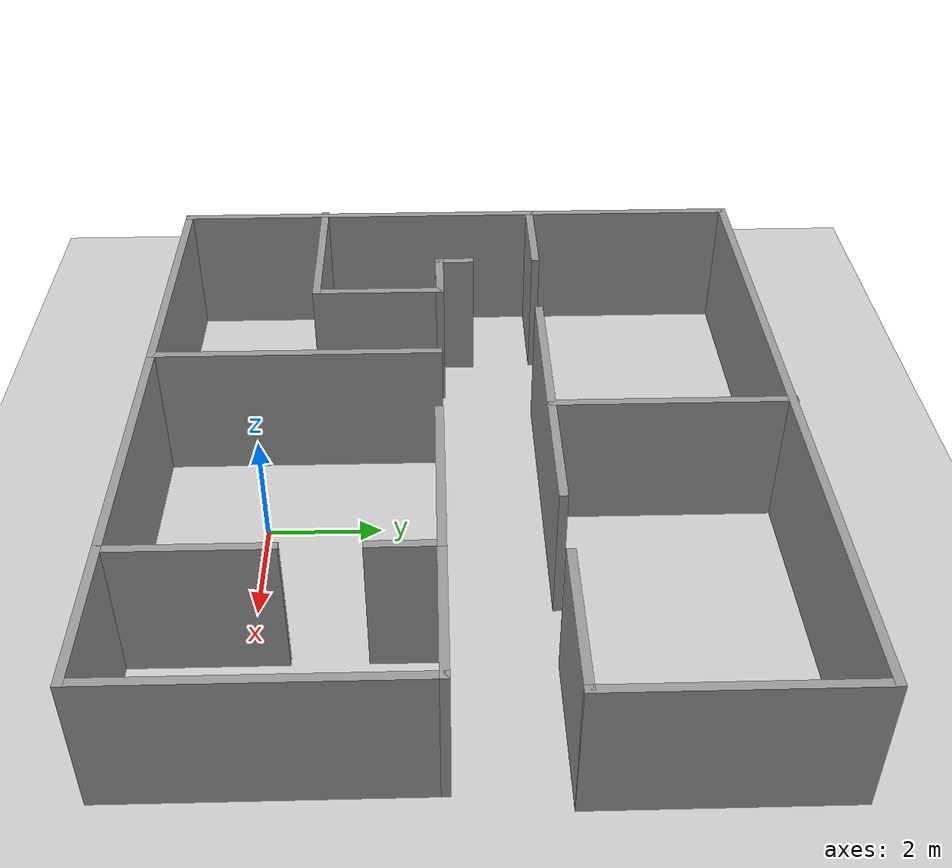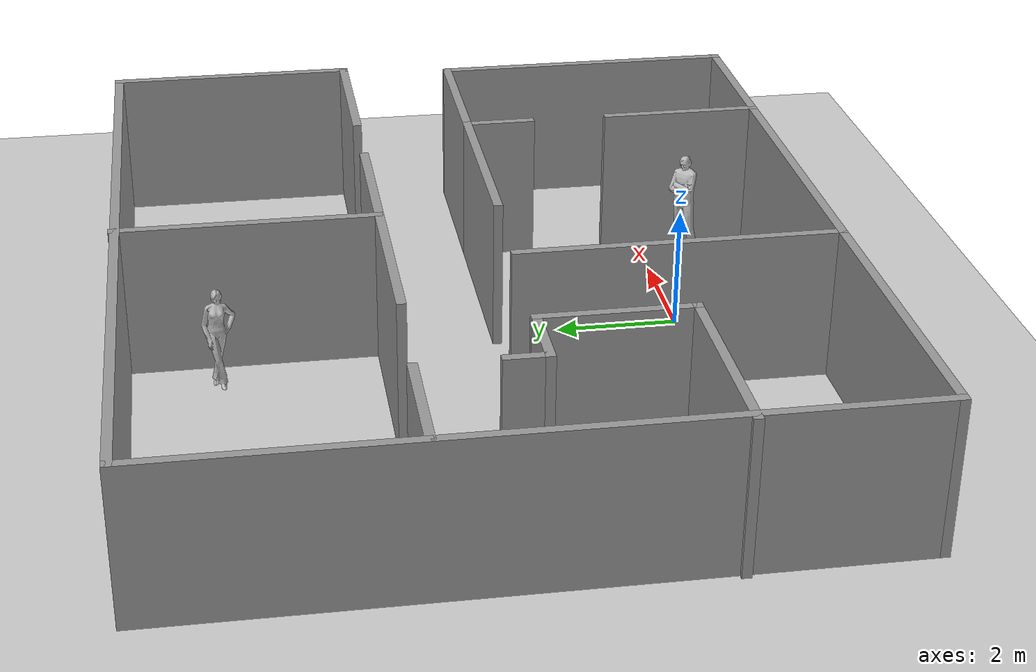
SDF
<sdf version="1.6">
 <world name="default">
  <light name="sun" type="directional">
   <pose>0 0 10 0 -0 0</pose>
   <diffuse>0.8 0.8 0.8 1</diffuse>
   <specular>0.1 0.1 0.1 1</specular>
   <attenuation>
    <range>1000</range>
    <constant>0.9</constant>
    <linear>0.01</linear>
    <quadratic>0.001</quadratic>
   </attenuation>
   <direction>-0.5 0.5 -1</direction>
  </light>
  <model name="ground_plane">
   <static>1</static>
   <link name="link">
    <collision name="collision">
     <geometry><plane><normal>0 0 1</normal><size>100 100</size></plane></geometry>
     <surface><friction><ode><mu>100</mu><mu2>50</mu2></ode></friction></surface>
    </collision>
    <visual name="visual">
     <cast_shadows>0</cast_shadows>
     <geometry><plane><normal>0 0 1</normal><size>100 100</size></plane></geometry>
     <material>
      <script><uri>file://media/materials/scripts/gazebo.material</uri><name>Gazebo/Grey</name></script>
     </material>
    </visual>
   </link>
  </model>
  <gravity>0 0 -9.8</gravity>
  <magnetic_field>6e-06 2.3e-05 -4.2e-05</magnetic_field>
  <atmosphere type="adiabatic"/>
  <physics name="default_physics" default="0" type="ode">
   <max_step_size>0.001</max_step_size>
   <real_time_factor>1</real_time_factor>
   <real_time_update_rate>1000</real_time_update_rate>
  </physics>
  <scene><ambient>0.4 0.4 0.4 1</ambient><background>0.7 0.7 0.7 1</background><shadows>1</shadows></scene>
  <spherical_coordinates>
   <surface_model>EARTH_WGS84</surface_model>
   <latitude_deg>0</latitude_deg>
   <longitude_deg>0</longitude_deg>
   <elevation>0</elevation>
   <heading_deg>0</heading_deg>
  </spherical_coordinates>
  <model name="flat_3">
   <pose>-0.575876 3.5217 0 0 -0 0</pose>
   <link name="Wall_0">
    <collision name="Wall_0_Collision">
     <geometry><box><size>5.25 0.15 2.5</size></box></geometry>
     <pose>0 0 1.25 0 -0 0</pose>
    </collision>
    <visual name="Wall_0_Visual">
     <pose>0 0 1.25 0 -0 0</pose>
     <geometry><box><size>5.25 0.15 2.5</size></box></geometry>
     <material>
      <script><uri>file://media/materials/scripts/gazebo.material</uri><name>Gazebo/Grey</name></script>
      <ambient>1 1 1 1</ambient>
     </material>
    </visual>
    <pose>-1.41412 -3.0117 0 0 -0 1.5708</pose>
   </link>
   <link name="Wall_11">
    <collision name="Wall_11_Collision">
     <geometry><box><size>2.75 0.15 2.5</size></box></geometry>
     <pose>0 0 1.25 0 -0 0</pose>
    </collision>
    <visual name="Wall_11_Visual">
     <pose>0 0 1.25 0 -0 0</pose>
     <geometry><box><size>2.75 0.15 2.5</size></box></geometry>
     <material>
      <script><uri>file://media/materials/scripts/gazebo.material</uri><name>Gazebo/Grey</name></script>
      <ambient>1 1 1 1</ambient>
     </material>
    </visual>
    <pose>4.98588 -5.5617 0 0 -0 0</pose>
   </link>
   <link name="Wall_14">
    <collision name="Wall_14_Collision">
     <geometry><box><size>5.25 0.15 2.5</size></box></geometry>
     <pose>0 0 1.25 0 -0 0</pose>
    </collision>
    <visual name="Wall_14_Visual">
     <pose>0 0 1.25 0 -0 0</pose>
     <geometry><box><size>5.25 0.15 2.5</size></box></geometry>
     <material>
      <script><uri>file://media/materials/scripts/gazebo.material</uri><name>Gazebo/Grey</name></script>
      <ambient>1 1 1 1</ambient>
     </material>
    </visual>
    <pose>6.28588 -3.0117 0 0 -0 1.5708</pose>
   </link>
   <link name="Wall_15">
    <collision name="Wall_15_Collision">
     <geometry><box><size>2.75 0.15 2.5</size></box></geometry>
     <pose>0 0 1.25 0 -0 0</pose>
    </collision>
    <visual name="Wall_15_Visual">
     <pose>0 0 1.25 0 -0 0</pose>
     <geometry><box><size>2.75 0.15 2.5</size></box></geometry>
     <material>
      <script><uri>file://media/materials/scripts/gazebo.material</uri><name>Gazebo/Grey</name></script>
      <ambient>1 1 1 1</ambient>
     </material>
    </visual>
    <pose>4.98588 -0.461699 0 0 -0 3.14159</pose>
   </link>
   <link name="Wall_17">
    <collision name="Wall_17_Collision">
     <geometry><box><size>5.25 0.15 2.5</size></box></geometry>
     <pose>0 0 1.25 0 -0 0</pose>
    </collision>
    <visual name="Wall_17_Visual">
     <pose>0 0 1.25 0 -0 0</pose>
     <geometry><box><size>5.25 0.15 2.5</size></box></geometry>
     <material>
      <script><uri>file://media/materials/scripts/gazebo.material</uri><name>Gazebo/Grey</name></script>
      <ambient>1 1 1 1</ambient>
     </material>
    </visual>
    <pose>-3.96412 -5.5617 0 0 -0 3.14159</pose>
   </link>
   <link name="Wall_18">
    <collision name="Wall_18_Collision">
     <geometry><box><size>11.25 0.15 2.5</size></box></geometry>
     <pose>0 0 1.25 0 -0 0</pose>
    </collision>
    <visual name="Wall_18_Visual">
     <pose>0 0 1.25 0 -0 0</pose>
     <geometry><box><size>11.25 0.15 2.5</size></box></geometry>
     <material>
      <script><uri>file://media/materials/scripts/gazebo.material</uri><name>Gazebo/Grey</name></script>
      <ambient>1 1 1 1</ambient>
     </material>
    </visual>
    <pose>-6.51412 -0.011699 0 0 -0 1.5708</pose>
   </link>
   <link name="Wall_19">
    <collision name="Wall_19_Collision">
     <geometry><box><size>13.25 0.15 2.5</size></box></geometry>
     <pose>0 0 1.25 0 -0 0</pose>
    </collision>
    <visual name="Wall_19_Visual">
     <pose>0 0 1.25 0 -0 0</pose>
     <geometry><box><size>13.25 0.15 2.5</size></box></geometry>
     <material>
      <script><uri>file://media/materials/scripts/gazebo.material</uri><name>Gazebo/Grey</name></script>
      <ambient>1 1 1 1</ambient>
     </material>
    </visual>
    <pose>0.035876 5.5383 0 0 -0 0</pose>
   </link>
   <link name="Wall_20">
    <collision name="Wall_20_Collision">
     <geometry><box><size>4.25 0.15 2.5</size></box></geometry>
     <pose>0 0 1.25 0 -0 0</pose>
    </collision>
    <visual name="Wall_20_Visual">
     <pose>0 0 1.25 0 -0 0</pose>
     <geometry><box><size>4.25 0.15 2.5</size></box></geometry>
     <material>
      <script><uri>file://media/materials/scripts/gazebo.material</uri><name>Gazebo/Grey</name></script>
      <ambient>1 1 1 1</ambient>
     </material>
    </visual>
    <pose>6.58588 3.4883 0 0 0 -1.5708</pose>
   </link>
   <link name="Wall_23">
    <collision name="Wall_23_Collision">
     <geometry><box><size>2 0.15 2.5</size></box></geometry>
     <pose>0 0 1.25 0 -0 0</pose>
    </collision>
    <visual name="Wall_23_Visual">
     <pose>0 0 1.25 0 -0 0</pose>
     <geometry><box><size>2 0.15 2.5</size></box></geometry>
     <material>
      <script><uri>file://media/materials/scripts/gazebo.material</uri><name>Gazebo/Grey</name></script>
      <ambient>1 1 1 1</ambient>
     </material>
    </visual>
    <pose>-5.55198 1.49212 0 0 -0 0</pose>
   </link>
   <link name="Wall_25">
    <collision name="Wall_25_Collision">
     <geometry><box><size>5.5 0.15 2.5</size></box></geometry>
     <pose>0 0 1.25 0 -0 0</pose>
    </collision>
    <visual name="Wall_25_Visual">
     <pose>0 0 1.25 0 -0 0</pose>
     <geometry><box><size>5.5 0.15 2.5</size></box></geometry>
     <material>
      <script><uri>file://media/materials/scripts/gazebo.material</uri><name>Gazebo/Grey</name></script>
      <ambient>1 1 1 1</ambient>
     </material>
    </visual>
    <pose>-0.089124 1.4383 0 0 -0 0</pose>
   </link>
   <link name="Wall_27">
    <collision name="Wall_27_Collision">
     <geometry><box><size>2.75 0.15 2.5</size></box></geometry>
     <pose>0 0 1.25 0 -0 0</pose>
    </collision>
    <visual name="Wall_27_Visual">
     <pose>0 0 1.25 0 -0 0</pose>
     <geometry><box><size>2.75 0.15 2.5</size></box></geometry>
     <material>
      <script><uri>file://media/materials/scripts/gazebo.material</uri><name>Gazebo/Grey</name></script>
      <ambient>1 1 1 1</ambient>
     </material>
    </visual>
    <pose>5.23588 1.4383 0 0 -0 0</pose>
   </link>
   <link name="Wall_29">
    <collision name="Wall_29_Collision">
     <geometry><box><size>4.25 0.15 2.5</size></box></geometry>
     <pose>0 0 1.25 0 -0 0</pose>
    </collision>
    <visual name="Wall_29_Visual">
     <pose>0 0 1.25 0 -0 0</pose>
     <geometry><box><size>4.25 0.15 2.5</size></box></geometry>
     <material>
      <script><uri>file://media/materials/scripts/gazebo.material</uri><name>Gazebo/Grey</name></script>
      <ambient>1 1 1 1</ambient>
     </material>
    </visual>
    <pose>0.214873 3.5117 0 0 -0 1.5708</pose>
   </link>
   <link name="Wall_3">
    <collision name="Wall_3_Collision">
     <geometry><box><size>5.25 0.15 2.5</size></box></geometry>
     <pose>0 0 1.25 0 -0 0</pose>
    </collision>
    <visual name="Wall_3_Visual">
     <pose>0 0 1.25 0 -0 0</pose>
     <geometry><box><size>5.25 0.15 2.5</size></box></geometry>
     <material>
      <script><uri>file://media/materials/scripts/gazebo.material</uri><name>Gazebo/Grey</name></script>
      <ambient>1 1 1 1</ambient>
     </material>
    </visual>
    <pose>1.13588 -5.5617 0 0 -0 0</pose>
   </link>
   <link name="Wall_32">
    <collision name="Wall_32_Collision">
     <geometry><box><size>3.25 0.15 2.5</size></box></geometry>
     <pose>0 0 1.25 0 -0 0</pose>
    </collision>
    <visual name="Wall_32_Visual">
     <pose>0 0 1.25 0 -0 0</pose>
     <geometry><box><size>3.25 0.15 2.5</size></box></geometry>
     <material>
      <script><uri>file://media/materials/scripts/gazebo.material</uri><name>Gazebo/Grey</name></script>
      <ambient>1 1 1 1</ambient>
     </material>
    </visual>
    <pose>-5.03588 -2.75475 0 0 -0 0</pose>
   </link>
   <link name="Wall_33">
    <collision name="Wall_33_Collision">
     <geometry><box><size>2.5 0.15 2.5</size></box></geometry>
     <pose>0 0 1.25 0 -0 0</pose>
    </collision>
    <visual name="Wall_33_Visual">
     <pose>0 0 1.25 0 -0 0</pose>
     <geometry><box><size>2.5 0.15 2.5</size></box></geometry>
     <material>
      <script><uri>file://media/materials/scripts/gazebo.material</uri><name>Gazebo/Grey</name></script>
      <ambient>1 1 1 1</ambient>
     </material>
    </visual>
    <pose>-3.48588 -1.57975 0 0 -0 1.5708</pose>
   </link>
   <link name="Wall_34">
    <collision name="Wall_34_Collision">
     <geometry><box><size>1.25 0.15 2.5</size></box></geometry>
     <pose>0 0 1.25 0 -0 0</pose>
    </collision>
    <visual name="Wall_34_Visual">
     <pose>0 0 1.25 0 -0 0</pose>
     <geometry><box><size>1.25 0.15 2.5</size></box></geometry>
     <material>
      <script><uri>file://media/materials/scripts/gazebo.material</uri><name>Gazebo/Grey</name></script>
      <ambient>1 1 1 1</ambient>
     </material>
    </visual>
    <pose>-4.03588 -0.404749 0 0 -0 3.14159</pose>
   </link>
   <link name="Wall_35">
    <collision name="Wall_35_Collision">
     <geometry><box><size>0.75 0.15 2.5</size></box></geometry>
     <pose>0 0 1.25 0 -0 0</pose>
    </collision>
    <visual name="Wall_35_Visual">
     <pose>0 0 1.25 0 -0 0</pose>
     <geometry><box><size>0.75 0.15 2.5</size></box></geometry>
     <material>
      <script><uri>file://media/materials/scripts/gazebo.material</uri><name>Gazebo/Grey</name></script>
      <ambient>1 1 1 1</ambient>
     </material>
    </visual>
    <pose>-4.58588 -0.104749 0 0 -0 1.5708</pose>
   </link>
   <link name="Wall_5">
    <collision name="Wall_5_Collision">
     <geometry><box><size>3.5 0.15 2.5</size></box></geometry>
     <pose>0 0 1.25 0 -0 0</pose>
    </collision>
    <visual name="Wall_5_Visual">
     <pose>0 0 1.25 0 -0 0</pose>
     <geometry><box><size>3.5 0.15 2.5</size></box></geometry>
     <material>
      <script><uri>file://media/materials/scripts/gazebo.material</uri><name>Gazebo/Grey</name></script>
      <ambient>1 1 1 1</ambient>
     </material>
    </visual>
    <pose>2.01088 -0.461699 0 0 -0 3.14159</pose>
   </link>
   <link name="Wall_7">
    <collision name="Wall_7_Collision">
     <geometry><box><size>1.25 0.15 2.5</size></box></geometry>
     <pose>0 0 1.25 0 -0 0</pose>
    </collision>
    <visual name="Wall_7_Visual">
     <pose>0 0 1.25 0 -0 0</pose>
     <geometry><box><size>1.25 0.15 2.5</size></box></geometry>
     <material>
      <script><uri>file://media/materials/scripts/gazebo.material</uri><name>Gazebo/Grey</name></script>
      <ambient>1 1 1 1</ambient>
     </material>
    </visual>
    <pose>3.68588 -1.0117 0 0 0 -1.5708</pose>
   </link>
   <link name="Wall_9">
    <collision name="Wall_9_Collision">
     <geometry><box><size>2.75 0.15 2.5</size></box></geometry>
     <pose>0 0 1.25 0 -0 0</pose>
    </collision>
    <visual name="Wall_9_Visual">
     <pose>0 0 1.25 0 -0 0</pose>
     <geometry><box><size>2.75 0.15 2.5</size></box></geometry>
     <material>
      <script><uri>file://media/materials/scripts/gazebo.material</uri><name>Gazebo/Grey</name></script>
      <ambient>1 1 1 1</ambient>
     </material>
    </visual>
    <pose>3.68588 -4.2617 0 0 -0 1.5708</pose>
   </link>
   <static>1</static>
  </model>
  <model name="citizen_extras_male_03">
   <static>1</static>
   <link name="link">
    <inertial>
     <mass>20</mass>
     <inertia><ixx>0.0</ixx><ixy>0.0</ixy><ixz>0.0</ixz><iyy>0.0</iyy><iyz>0.0</iyz><izz>0.0</izz></inertia>
    </inertial>
    <collision name="collision">
     <pose>2.45 -0.75 0 0 0 -2.32</pose>
     <geometry><mesh><uri>model://citizen_extras_male_03/meshes/mesh.dae</uri></mesh></geometry>
    </collision>
    <visual name="visual">
     <pose>2.45 -0.75 0 0 0 -2.32</pose>
     <geometry><mesh><uri>model://citizen_extras_male_03/meshes/mesh.dae</uri></mesh></geometry>
    </visual>
   </link>
  </model>
  <model name="citizen_extras_female_03">
   <static>1</static>
   <link name="link">
    <inertial>
     <mass>20</mass>
     <inertia><ixx>0.0</ixx><ixy>0.0</ixy><ixz>0.0</ixz><iyy>0.0</iyy><iyz>0.0</iyz><izz>0.0</izz></inertia>
    </inertial>
    <collision name="collision">
     <pose>-1 7.6 0 0 0 -1.57</pose>
     <geometry><mesh><uri>model://citizen_extras_female_03/meshes/mesh.dae</uri></mesh></geometry>
    </collision>
    <visual name="visual">
     <pose>-1 7.6 0 0 0 -1.57</pose>
     <geometry><mesh><uri>model://citizen_extras_female_03/meshes/mesh.dae</uri></mesh></geometry>
    </visual>
   </link>
  </model>
 </world>
</sdf>
